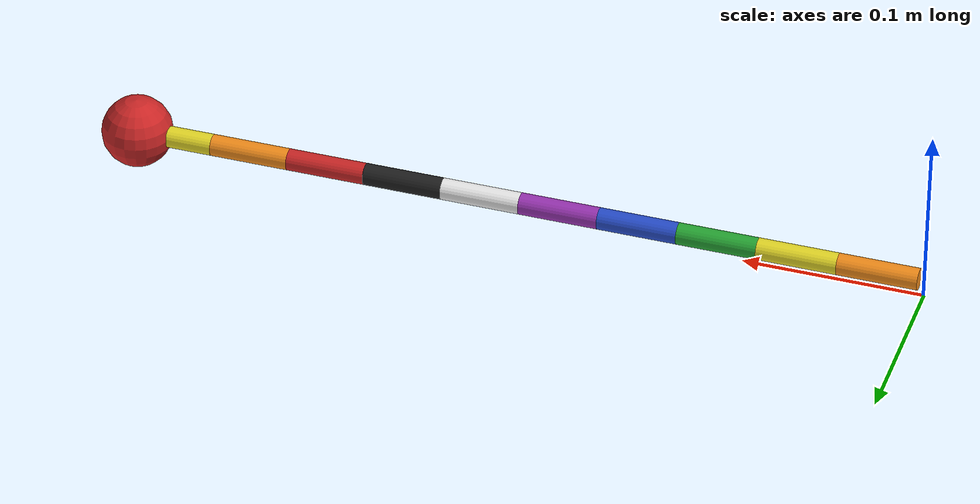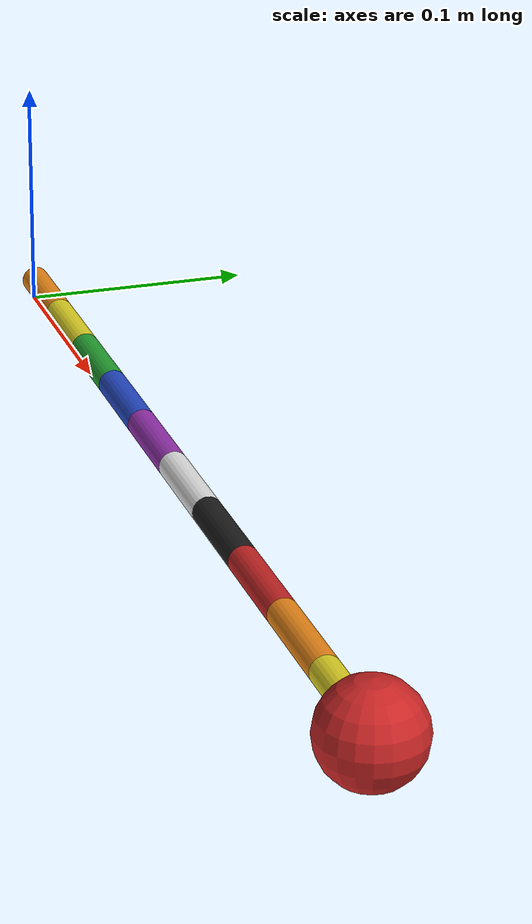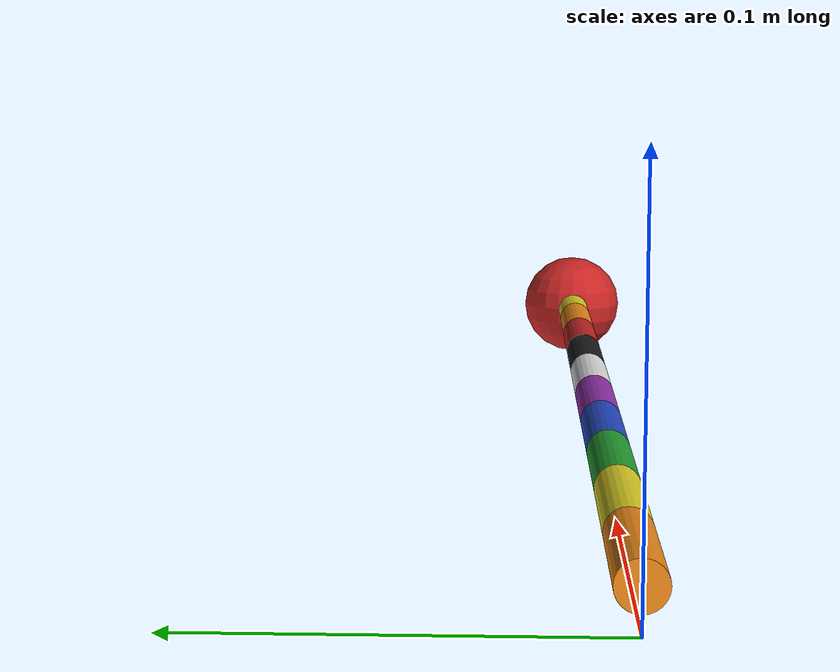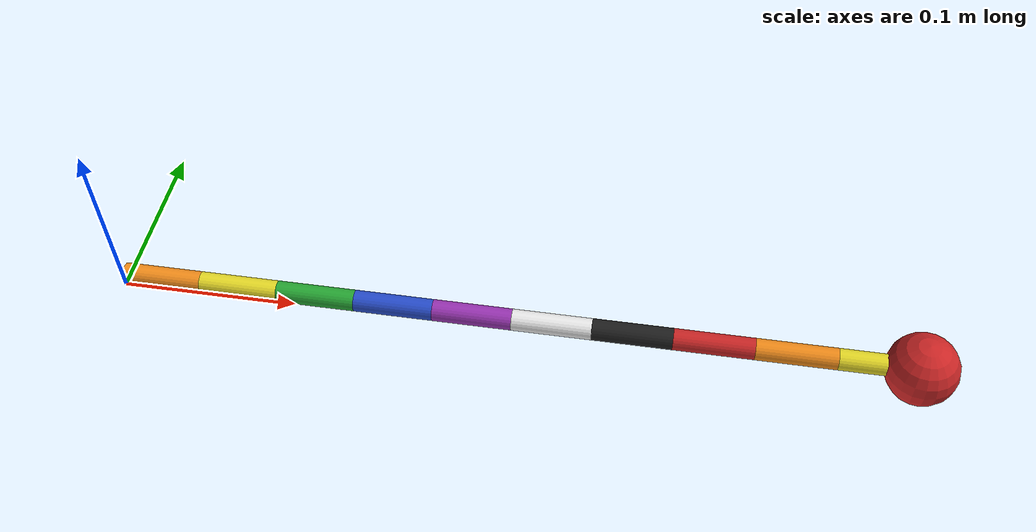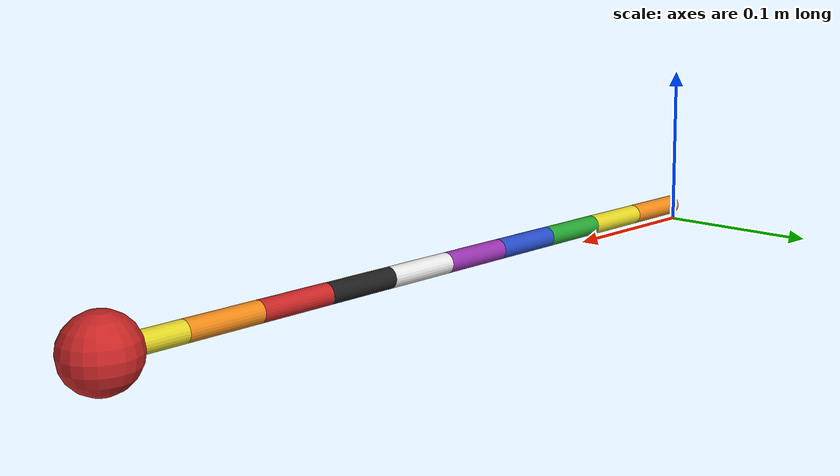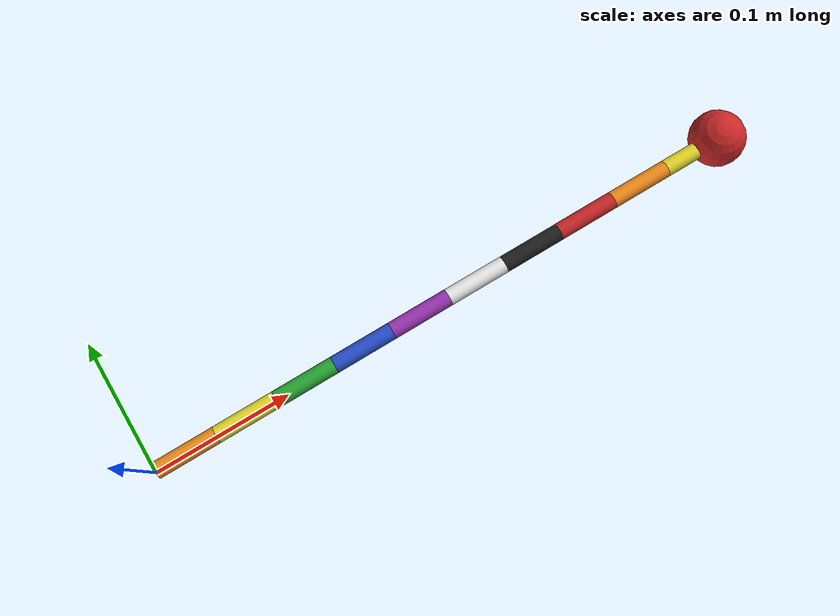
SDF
<sdf version="1.6">
    <model name="link_bot">
        <pose frame="">0 0 0.01 0 0 0</pose>

        <link name="link_1">
            <pose frame="">0.0444 0 0 3.14159 -1.57079 3.14159</pose>
            <inertial>
                <pose frame="">0.025 0 0 0 0 0</pose>
                <mass>0.05</mass>
                <inertia>
                    <ixx>8.664e-06</ixx>
                    <ixy>0</ixy>
                    <ixz>0</ixz>
                    <iyy>8.664e-06</iyy>
                    <iyz>0</iyz>
                    <izz>9.000000000000001e-07</izz>
                </inertia>
            </inertial>
            <collision name="link_1_collision">
                <pose frame="">0 0 0.019200000000000002 0 0 0</pose>
                <geometry>
                    <box>
                        <size>0.012 0.012 0.0333</size>
                    </box>
                </geometry>
                <surface>
                    <friction>
                        <ode>
                            <mu>0.10</mu>
                            <mu2>0.10</mu2>
                        </ode>
                    </friction>
                </surface>
                <max_contacts>5</max_contacts>
            </collision>
            <visual name="link_1_visual">
                <cast_shadows>0</cast_shadows>
                <pose frame="">0 0 0.019200000000000002 0 0 0</pose>
                <geometry>
                    <cylinder>
                        <length>0.0444</length>
                        <radius>0.006</radius>
                    </cylinder>
                </geometry>
                <material>
                    <script>
                        <name>Gazebo/Orange</name>
                        <uri>file://media/materials/scripts/gazebo.material</uri>
                    </script>
                </material>
            </visual>
            <self_collide>1</self_collide>
        </link>

        <link name="link_2">
            <pose frame="">0.0888 0 0 3.14159 -1.57079 3.14159</pose>
            <inertial>
                <pose frame="">0.025 0 0 0 0 0</pose>
                <mass>0.05</mass>
                <inertia>
                    <ixx>8.664e-06</ixx>
                    <ixy>0</ixy>
                    <ixz>0</ixz>
                    <iyy>8.664e-06</iyy>
                    <iyz>0</iyz>
                    <izz>9.000000000000001e-07</izz>
                </inertia>
            </inertial>
            <collision name="link_2_collision">
                <pose frame="">0 0 0.019200000000000002 0 0 0</pose>
                <geometry>
                    <box>
                        <size>0.012 0.012 0.0333</size>
                    </box>
                </geometry>
                <surface>
                    <friction>
                        <ode>
                            <mu>0.10</mu>
                            <mu2>0.10</mu2>
                        </ode>
                    </friction>
                </surface>
                <max_contacts>5</max_contacts>
            </collision>
            <visual name="link_2_visual">
                <cast_shadows>0</cast_shadows>
                <pose frame="">0 0 0.019200000000000002 0 0 0</pose>
                <geometry>
                    <cylinder>
                        <length>0.0444</length>
                        <radius>0.006</radius>
                    </cylinder>
                </geometry>
                <material>
                    <script>
                        <name>Gazebo/Yellow</name>
                        <uri>file://media/materials/scripts/gazebo.material</uri>
                    </script>
                </material>
            </visual>
            <self_collide>1</self_collide>
        </link>

        <link name="link_3">
            <pose frame="">0.1332 0 0 3.14159 -1.57079 3.14159</pose>
            <inertial>
                <pose frame="">0.025 0 0 0 0 0</pose>
                <mass>0.05</mass>
                <inertia>
                    <ixx>8.664e-06</ixx>
                    <ixy>0</ixy>
                    <ixz>0</ixz>
                    <iyy>8.664e-06</iyy>
                    <iyz>0</iyz>
                    <izz>9.000000000000001e-07</izz>
                </inertia>
            </inertial>
            <collision name="link_3_collision">
                <pose frame="">0 0 0.019200000000000002 0 0 0</pose>
                <geometry>
                    <box>
                        <size>0.012 0.012 0.0333</size>
                    </box>
                </geometry>
                <surface>
                    <friction>
                        <ode>
                            <mu>0.10</mu>
                            <mu2>0.10</mu2>
                        </ode>
                    </friction>
                </surface>
                <max_contacts>5</max_contacts>
            </collision>
            <visual name="link_3_visual">
                <cast_shadows>0</cast_shadows>
                <pose frame="">0 0 0.019200000000000002 0 0 0</pose>
                <geometry>
                    <cylinder>
                        <length>0.0444</length>
                        <radius>0.006</radius>
                    </cylinder>
                </geometry>
                <material>
                    <script>
                        <name>Gazebo/Green</name>
                        <uri>file://media/materials/scripts/gazebo.material</uri>
                    </script>
                </material>
            </visual>
            <self_collide>1</self_collide>
        </link>

        <link name="link_4">
            <pose frame="">0.1776 0 0 3.14159 -1.57079 3.14159</pose>
            <inertial>
                <pose frame="">0.025 0 0 0 0 0</pose>
                <mass>0.05</mass>
                <inertia>
                    <ixx>8.664e-06</ixx>
                    <ixy>0</ixy>
                    <ixz>0</ixz>
                    <iyy>8.664e-06</iyy>
                    <iyz>0</iyz>
                    <izz>9.000000000000001e-07</izz>
                </inertia>
            </inertial>
            <collision name="link_4_collision">
                <pose frame="">0 0 0.019200000000000002 0 0 0</pose>
                <geometry>
                    <box>
                        <size>0.012 0.012 0.0333</size>
                    </box>
                </geometry>
                <surface>
                    <friction>
                        <ode>
                            <mu>0.10</mu>
                            <mu2>0.10</mu2>
                        </ode>
                    </friction>
                </surface>
                <max_contacts>5</max_contacts>
            </collision>
            <visual name="link_4_visual">
                <cast_shadows>0</cast_shadows>
                <pose frame="">0 0 0.019200000000000002 0 0 0</pose>
                <geometry>
                    <cylinder>
                        <length>0.0444</length>
                        <radius>0.006</radius>
                    </cylinder>
                </geometry>
                <material>
                    <script>
                        <name>Gazebo/Blue</name>
                        <uri>file://media/materials/scripts/gazebo.material</uri>
                    </script>
                </material>
            </visual>
            <self_collide>1</self_collide>
        </link>

        <link name="link_5">
            <pose frame="">0.222 0 0 3.14159 -1.57079 3.14159</pose>
            <inertial>
                <pose frame="">0.025 0 0 0 0 0</pose>
                <mass>0.05</mass>
                <inertia>
                    <ixx>8.664e-06</ixx>
                    <ixy>0</ixy>
                    <ixz>0</ixz>
                    <iyy>8.664e-06</iyy>
                    <iyz>0</iyz>
                    <izz>9.000000000000001e-07</izz>
                </inertia>
            </inertial>
            <collision name="link_5_collision">
                <pose frame="">0 0 0.019200000000000002 0 0 0</pose>
                <geometry>
                    <box>
                        <size>0.012 0.012 0.0333</size>
                    </box>
                </geometry>
                <surface>
                    <friction>
                        <ode>
                            <mu>0.10</mu>
                            <mu2>0.10</mu2>
                        </ode>
                    </friction>
                </surface>
                <max_contacts>5</max_contacts>
            </collision>
            <visual name="link_5_visual">
                <cast_shadows>0</cast_shadows>
                <pose frame="">0 0 0.019200000000000002 0 0 0</pose>
                <geometry>
                    <cylinder>
                        <length>0.0444</length>
                        <radius>0.006</radius>
                    </cylinder>
                </geometry>
                <material>
                    <script>
                        <name>Gazebo/Purple</name>
                        <uri>file://media/materials/scripts/gazebo.material</uri>
                    </script>
                </material>
            </visual>
            <self_collide>1</self_collide>
        </link>

        <link name="link_6">
            <pose frame="">0.2664 0 0 3.14159 -1.57079 3.14159</pose>
            <inertial>
                <pose frame="">0.025 0 0 0 0 0</pose>
                <mass>0.05</mass>
                <inertia>
                    <ixx>8.664e-06</ixx>
                    <ixy>0</ixy>
                    <ixz>0</ixz>
                    <iyy>8.664e-06</iyy>
                    <iyz>0</iyz>
                    <izz>9.000000000000001e-07</izz>
                </inertia>
            </inertial>
            <collision name="link_6_collision">
                <pose frame="">0 0 0.019200000000000002 0 0 0</pose>
                <geometry>
                    <box>
                        <size>0.012 0.012 0.0333</size>
                    </box>
                </geometry>
                <surface>
                    <friction>
                        <ode>
                            <mu>0.10</mu>
                            <mu2>0.10</mu2>
                        </ode>
                    </friction>
                </surface>
                <max_contacts>5</max_contacts>
            </collision>
            <visual name="link_6_visual">
                <cast_shadows>0</cast_shadows>
                <pose frame="">0 0 0.019200000000000002 0 0 0</pose>
                <geometry>
                    <cylinder>
                        <length>0.0444</length>
                        <radius>0.006</radius>
                    </cylinder>
                </geometry>
                <material>
                    <script>
                        <name>Gazebo/White</name>
                        <uri>file://media/materials/scripts/gazebo.material</uri>
                    </script>
                </material>
            </visual>
            <self_collide>1</self_collide>
        </link>

        <link name="link_7">
            <pose frame="">0.3108 0 0 3.14159 -1.57079 3.14159</pose>
            <inertial>
                <pose frame="">0.025 0 0 0 0 0</pose>
                <mass>0.05</mass>
                <inertia>
                    <ixx>8.664e-06</ixx>
                    <ixy>0</ixy>
                    <ixz>0</ixz>
                    <iyy>8.664e-06</iyy>
                    <iyz>0</iyz>
                    <izz>9.000000000000001e-07</izz>
                </inertia>
            </inertial>
            <collision name="link_7_collision">
                <pose frame="">0 0 0.019200000000000002 0 0 0</pose>
                <geometry>
                    <box>
                        <size>0.012 0.012 0.0333</size>
                    </box>
                </geometry>
                <surface>
                    <friction>
                        <ode>
                            <mu>0.10</mu>
                            <mu2>0.10</mu2>
                        </ode>
                    </friction>
                </surface>
                <max_contacts>5</max_contacts>
            </collision>
            <visual name="link_7_visual">
                <cast_shadows>0</cast_shadows>
                <pose frame="">0 0 0.019200000000000002 0 0 0</pose>
                <geometry>
                    <cylinder>
                        <length>0.0444</length>
                        <radius>0.006</radius>
                    </cylinder>
                </geometry>
                <material>
                    <script>
                        <name>Gazebo/Black</name>
                        <uri>file://media/materials/scripts/gazebo.material</uri>
                    </script>
                </material>
            </visual>
            <self_collide>1</self_collide>
        </link>

        <link name="link_8">
            <pose frame="">0.3552 0 0 3.14159 -1.57079 3.14159</pose>
            <inertial>
                <pose frame="">0.025 0 0 0 0 0</pose>
                <mass>0.05</mass>
                <inertia>
                    <ixx>8.664e-06</ixx>
                    <ixy>0</ixy>
                    <ixz>0</ixz>
                    <iyy>8.664e-06</iyy>
                    <iyz>0</iyz>
                    <izz>9.000000000000001e-07</izz>
                </inertia>
            </inertial>
            <collision name="link_8_collision">
                <pose frame="">0 0 0.019200000000000002 0 0 0</pose>
                <geometry>
                    <box>
                        <size>0.012 0.012 0.0333</size>
                    </box>
                </geometry>
                <surface>
                    <friction>
                        <ode>
                            <mu>0.10</mu>
                            <mu2>0.10</mu2>
                        </ode>
                    </friction>
                </surface>
                <max_contacts>5</max_contacts>
            </collision>
            <visual name="link_8_visual">
                <cast_shadows>0</cast_shadows>
                <pose frame="">0 0 0.019200000000000002 0 0 0</pose>
                <geometry>
                    <cylinder>
                        <length>0.0444</length>
                        <radius>0.006</radius>
                    </cylinder>
                </geometry>
                <material>
                    <script>
                        <name>Gazebo/Red</name>
                        <uri>file://media/materials/scripts/gazebo.material</uri>
                    </script>
                </material>
            </visual>
            <self_collide>1</self_collide>
        </link>

        <link name="link_9">
            <pose frame="">0.3996 0 0 3.14159 -1.57079 3.14159</pose>
            <inertial>
                <pose frame="">0.025 0 0 0 0 0</pose>
                <mass>0.05</mass>
                <inertia>
                    <ixx>8.664e-06</ixx>
                    <ixy>0</ixy>
                    <ixz>0</ixz>
                    <iyy>8.664e-06</iyy>
                    <iyz>0</iyz>
                    <izz>9.000000000000001e-07</izz>
                </inertia>
            </inertial>
            <collision name="link_9_collision">
                <pose frame="">0 0 0.019200000000000002 0 0 0</pose>
                <geometry>
                    <box>
                        <size>0.012 0.012 0.0333</size>
                    </box>
                </geometry>
                <surface>
                    <friction>
                        <ode>
                            <mu>0.10</mu>
                            <mu2>0.10</mu2>
                        </ode>
                    </friction>
                </surface>
                <max_contacts>5</max_contacts>
            </collision>
            <visual name="link_9_visual">
                <cast_shadows>0</cast_shadows>
                <pose frame="">0 0 0.019200000000000002 0 0 0</pose>
                <geometry>
                    <cylinder>
                        <length>0.0444</length>
                        <radius>0.006</radius>
                    </cylinder>
                </geometry>
                <material>
                    <script>
                        <name>Gazebo/Orange</name>
                        <uri>file://media/materials/scripts/gazebo.material</uri>
                    </script>
                </material>
            </visual>
            <self_collide>1</self_collide>
        </link>

        <link name="link_10">
            <pose frame="">0.444 0 0 3.14159 -1.57079 3.14159</pose>
            <inertial>
                <pose frame="">0.025 0 0 0 0 0</pose>
                <mass>0.05</mass>
                <inertia>
                    <ixx>8.664e-06</ixx>
                    <ixy>0</ixy>
                    <ixz>0</ixz>
                    <iyy>8.664e-06</iyy>
                    <iyz>0</iyz>
                    <izz>9.000000000000001e-07</izz>
                </inertia>
            </inertial>
            <collision name="link_10_collision">
                <pose frame="">0 0 0.019200000000000002 0 0 0</pose>
                <geometry>
                    <box>
                        <size>0.012 0.012 0.0333</size>
                    </box>
                </geometry>
                <surface>
                    <friction>
                        <ode>
                            <mu>0.10</mu>
                            <mu2>0.10</mu2>
                        </ode>
                    </friction>
                </surface>
                <max_contacts>5</max_contacts>
            </collision>
            <visual name="link_10_visual">
                <cast_shadows>0</cast_shadows>
                <pose frame="">0 0 0.019200000000000002 0 0 0</pose>
                <geometry>
                    <cylinder>
                        <length>0.0444</length>
                        <radius>0.006</radius>
                    </cylinder>
                </geometry>
                <material>
                    <script>
                        <name>Gazebo/Yellow</name>
                        <uri>file://media/materials/scripts/gazebo.material</uri>
                    </script>
                </material>
            </visual>
            <self_collide>1</self_collide>
        </link>

        <joint name="joint_1" type="revolute">
            <child>link_2</child>
            <parent>link_1</parent>
            <pose>0 0 0.0414 0 0 0</pose>
            <axis>
                <xyz>0 0 1</xyz>
                <limit>
                    <lower>-3</lower>
                    <upper>3</upper>
                    <effort>10</effort>
                    <velocity>5</velocity>
                </limit>
                <dynamics>
                    <damping>0</damping>
                    <friction>0</friction>
                </dynamics>
                <use_parent_model_frame>1</use_parent_model_frame>
            </axis>
        </joint>

        <joint name="joint_2" type="revolute">
            <child>link_3</child>
            <parent>link_2</parent>
            <pose>0 0 0.0414 0 0 0</pose>
            <axis>
                <xyz>0 0 1</xyz>
                <limit>
                    <lower>-3</lower>
                    <upper>3</upper>
                    <effort>10</effort>
                    <velocity>5</velocity>
                </limit>
                <dynamics>
                    <damping>0</damping>
                    <friction>0</friction>
                </dynamics>
                <use_parent_model_frame>1</use_parent_model_frame>
            </axis>
        </joint>

        <joint name="joint_3" type="revolute">
            <child>link_4</child>
            <parent>link_3</parent>
            <pose>0 0 0.0414 0 0 0</pose>
            <axis>
                <xyz>0 0 1</xyz>
                <limit>
                    <lower>-3</lower>
                    <upper>3</upper>
                    <effort>10</effort>
                    <velocity>5</velocity>
                </limit>
                <dynamics>
                    <damping>0</damping>
                    <friction>0</friction>
                </dynamics>
                <use_parent_model_frame>1</use_parent_model_frame>
            </axis>
        </joint>

        <joint name="joint_4" type="revolute">
            <child>link_5</child>
            <parent>link_4</parent>
            <pose>0 0 0.0414 0 0 0</pose>
            <axis>
                <xyz>0 0 1</xyz>
                <limit>
                    <lower>-3</lower>
                    <upper>3</upper>
                    <effort>10</effort>
                    <velocity>5</velocity>
                </limit>
                <dynamics>
                    <damping>0</damping>
                    <friction>0</friction>
                </dynamics>
                <use_parent_model_frame>1</use_parent_model_frame>
            </axis>
        </joint>

        <joint name="joint_5" type="revolute">
            <child>link_6</child>
            <parent>link_5</parent>
            <pose>0 0 0.0414 0 0 0</pose>
            <axis>
                <xyz>0 0 1</xyz>
                <limit>
                    <lower>-3</lower>
                    <upper>3</upper>
                    <effort>10</effort>
                    <velocity>5</velocity>
                </limit>
                <dynamics>
                    <damping>0</damping>
                    <friction>0</friction>
                </dynamics>
                <use_parent_model_frame>1</use_parent_model_frame>
            </axis>
        </joint>

        <joint name="joint_6" type="revolute">
            <child>link_7</child>
            <parent>link_6</parent>
            <pose>0 0 0.0414 0 0 0</pose>
            <axis>
                <xyz>0 0 1</xyz>
                <limit>
                    <lower>-3</lower>
                    <upper>3</upper>
                    <effort>10</effort>
                    <velocity>5</velocity>
                </limit>
                <dynamics>
                    <damping>0</damping>
                    <friction>0</friction>
                </dynamics>
                <use_parent_model_frame>1</use_parent_model_frame>
            </axis>
        </joint>

        <joint name="joint_7" type="revolute">
            <child>link_8</child>
            <parent>link_7</parent>
            <pose>0 0 0.0414 0 0 0</pose>
            <axis>
                <xyz>0 0 1</xyz>
                <limit>
                    <lower>-3</lower>
                    <upper>3</upper>
                    <effort>10</effort>
                    <velocity>5</velocity>
                </limit>
                <dynamics>
                    <damping>0</damping>
                    <friction>0</friction>
                </dynamics>
                <use_parent_model_frame>1</use_parent_model_frame>
            </axis>
        </joint>

        <joint name="joint_8" type="revolute">
            <child>link_9</child>
            <parent>link_8</parent>
            <pose>0 0 0.0414 0 0 0</pose>
            <axis>
                <xyz>0 0 1</xyz>
                <limit>
                    <lower>-3</lower>
                    <upper>3</upper>
                    <effort>10</effort>
                    <velocity>5</velocity>
                </limit>
                <dynamics>
                    <damping>0</damping>
                    <friction>0</friction>
                </dynamics>
                <use_parent_model_frame>1</use_parent_model_frame>
            </axis>
        </joint>

        <joint name="joint_9" type="revolute">
            <child>link_10</child>
            <parent>link_9</parent>
            <pose>0 0 0.0414 0 0 0</pose>
            <axis>
                <xyz>0 0 1</xyz>
                <limit>
                    <lower>-3</lower>
                    <upper>3</upper>
                    <effort>10</effort>
                    <velocity>5</velocity>
                </limit>
                <dynamics>
                    <damping>0</damping>
                    <friction>0</friction>
                </dynamics>
                <use_parent_model_frame>1</use_parent_model_frame>
            </axis>
        </joint>

        <link name='head'>
            <pose frame=''>0.447 0 0 0 0 0</pose>
            <inertial>
                <pose frame=''>0 0 0 0 0 0</pose>
                <mass>0.1</mass>
                <inertia>
                    <ixx>0.0001</ixx>
                    <ixy>0</ixy>
                    <ixz>0</ixz>
                    <iyy>0.0001</iyy>
                    <iyz>0</iyz>
                    <izz>0.001</izz>
                </inertia>
            </inertial>
            <collision name='head_collision'>
                <pose frame=''>0 0 0 0 0 0</pose>
                <geometry>
                    <sphere>
                        <radius>0.02</radius>
                    </sphere>
                </geometry>
                <surface>
                    <friction>
                        <ode>
                            <mu>0.10</mu>
                            <mu2>0.10</mu2>
                        </ode>
                    </friction>
                </surface>
                <max_contacts>20</max_contacts>
            </collision>
            <visual name='head_visual'>
                <cast_shadows>0</cast_shadows>
                <pose frame=''>0 0 0 0 0 0</pose>
                <geometry>
                    <sphere>
                        <radius>0.02</radius>
                    </sphere>
                </geometry>
                <material>
                    <script>
                        <name>Gazebo/Red</name>
                        <uri>file://media/materials/scripts/gazebo.material</uri>
                    </script>
                </material>
            </visual>
            <self_collide>1</self_collide>
            <sensor name='head_contact' type='contact'>
                <contact>
                    <collision>head_collision</collision>
                    <topic>__default_topic__</topic>
                </contact>
            </sensor>
        </link>
        <joint name="head_joint" type="revolute">
            <child>head</child>
            <parent>link_10</parent>
            <pose>0 0 0 0 0 0</pose>
            <axis>
                <xyz>0 0 1</xyz>
                <limit>
                    <lower>-3</lower>
                    <upper>3</upper>
                    <effort>10</effort>
                    <velocity>5</velocity>
                </limit>
                <dynamics>
                    <damping>0</damping>
                    <friction>0</friction>
                </dynamics>
            </axis>
            <physics>
                <ode>
                    <limit>
                        <cfm>0</cfm>
                        <erp>0.2</erp>
                    </limit>
                </ode>
            </physics>
        </joint>
        <plugin name='multi_link_bot_model_plugin' filename='libmulti_link_bot_model_plugin.so'>
            <kP_pos>50</kP_pos>
            <kI_pos>0.001</kI_pos>
            <kD_pos>0.0</kD_pos>
            <kP_vel>20.0</kP_vel>
            <kI_vel>0.0</kI_vel>
            <kD_vel>0.0</kD_vel>
            <max_force>1.0</max_force>
            <max_vel>0.15</max_vel>
            <max_vel_acc>0.01</max_vel_acc>
            <gripper1_link>head</gripper1_link>
            <num_links>10</num_links>
            <rope_length>0.444</rope_length>
        </plugin>
    </model>
</sdf>
